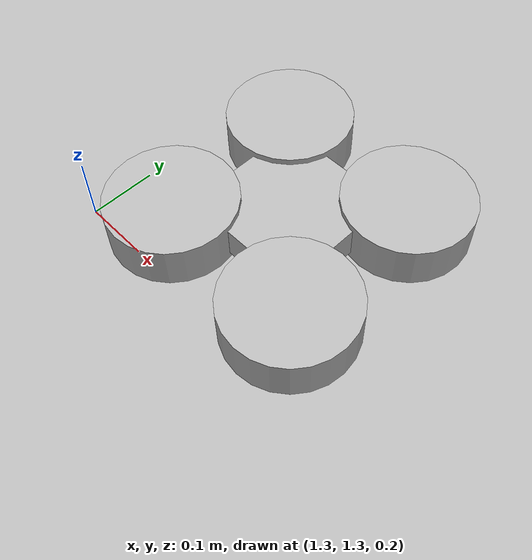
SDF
<?xml version='1.0'?>
<sdf version="1.6">
	<world name="default">
		<physics type="ode">
			<max_step_size>0.001</max_step_size>
			<real_time_update_rate>0</real_time_update_rate><!-- Handled by Paparazzi! -->
			<ode>
				<solver>
					<type>quick</type>
					<iters>1</iters>
				</solver>
			</ode>
		</physics>
		<scene>
			<ambient>0.4 0.4 0.4 1</ambient>
			<background>0.7 0.7 0.7 1</background>
			<shadows>0</shadows>
		</scene>
		<light name='sun' type='directional'>
			<cast_shadows>1</cast_shadows>
			<pose frame=''>0 0 10 0 -0 0</pose>
			<diffuse>0.8 0.8 0.8 1</diffuse>
			<specular>0.1 0.1 0.1 1</specular>
			<attenuation>
				<range>1000</range>
				<constant>0.9</constant>
				<linear>0.01</linear>
				<quadratic>0.001</quadratic>
			</attenuation>
			<direction>-0.5 0.5 -1</direction>
		</light>
		<spherical_coordinates>
			<surface_model>EARTH_WGS84</surface_model>
			<latitude_deg>51.9906</latitude_deg>
			<longitude_deg>4.37679</longitude_deg>
			<elevation>0</elevation>
			<heading_deg>180</heading_deg><!-- Temporary fix for issue https://bitbucket.org/osrf/gazebo/issues/2022/default-sphericalcoordinates-frame-should -->
		</spherical_coordinates>

		<include>
			<uri>model://hallway_closed</uri>
		</include>
		<include>
			<uri>model://ardrone_omni</uri>
            <pose>1.5 1.5 0.2 0 0 0</pose>
		</include>

	</world>
</sdf>

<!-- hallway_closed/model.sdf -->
<sdf version='1.6'>
  <model name='hallway_closed'>
    <link name='link_0'>
      <visual name='visual'>
        <geometry>
          <mesh>
            <uri>model://hallway_closed/hallway_closed_without_door.dae</uri>
            <scale>1 1 1</scale>
          </mesh>
        </geometry>
        <cast_shadows>0</cast_shadows>
      </visual>
      <collision name='collision'>
        <geometry>
          <mesh>
            <uri>model://hallway_closed/hallway_closed_without_door.dae</uri>
          </mesh>
        </geometry>
      </collision>
    </link>
    <static>1</static>
  </model>
</sdf>

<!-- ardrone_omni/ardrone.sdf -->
<sdf version='1.4'>
	<model name="paparazzi_uav">
		<pose>0 0 .1 0 0 0</pose>

		<link name="chassis">
			<velocity_decay>
				<linear>0.001</linear>
			</velocity_decay>
			<inertial><!-- Taken from Paparazzi's ARDrone model for JSBsim -->
				<mass>0.4</mass>
				<inertia>
					<ixx> 0.005 </ixx>
					<iyy> 0.005 </iyy>
					<izz> 0.010 </izz>
					<ixy> 0. </ixy>
					<ixz> 0. </ixz>
					<iyz> 0. </iyz>
				</inertia>
			</inertial>

			<collision name="collision">
				<geometry>
					<box>
						<size>.4 .4 .05</size>
					</box>
				</geometry>
			</collision>

			<visual name="visual">
				<geometry>
					<box>
						<size>.2 .2 .05</size>
					</box>
				</geometry>
			</visual>

			<sensor name="contactsensor" type="contact">
				<contact>
					<collision>collision</collision>
				</contact>
			</sensor>
		</link>

		<link name="bottom_camera">
			<pose>0 0 -.06 0 1.57 3.1415</pose>
			<inertial>
				<mass>0.001</mass>
				<inertia>
					<ixx>.0001</ixx>
					<iyy>.0001</iyy>
					<izz>.0001</izz>
					<ixy>0</ixy>
					<iyz>0</iyz>
					<ixz>0</ixz>
				</inertia>
			</inertial>
			<sensor name="camera" type="wideanglecamera">
				<update_rate>30</update_rate>
				<camera>
					<horizontal_fov>6.2831</horizontal_fov>
					<image>
						<width>240</width>
						<height>240</height>
					</image>
					<clip>
						<near>0.01</near>
						<far>100</far>
					</clip>
					<lens>
						<type>custom</type>
						<custom_function>
							<c1>1.0</c1>
							<c2>4</c2>
							<f>1.0</f>
							<fun>id</fun>
						</custom_function>
						<scale_to_hfov>true</scale_to_hfov>
						<cutoff_angle>3.1415</cutoff_angle>
						<env_texture_size>64</env_texture_size>
					</lens>
					<noise>
						<type>gaussian</type>
						<!-- Noise is sampled independently per pixel on each frame. That pixel's
							noise value is added to each of its color channels, which at that point lie
							in the range [0,1]. -->
						<mean>0.0</mean>
						<stddev>0.007</stddev>
					</noise>
				</camera>
			</sensor>
		</link>

		<joint name="bottom_camera_joint" type="fixed">
			<parent>chassis</parent>
			<child>bottom_camera</child>
		</joint>

		<link name="nw_motor">
			<pose>0.12 0.12 0 0 0 0</pose>
			<inertial>
				<mass>0.01</mass>
				<inertia>
					<ixx>.0001</ixx>
					<iyy>.0001</iyy>
					<izz>.0001</izz>
					<ixy>0</ixy>
					<iyz>0</iyz>
					<ixz>0</ixz>
				</inertia>
			</inertial>
			<visual name="visual">
				<geometry>
					<cylinder>
						<radius>0.10</radius>
						<length>.07</length>
					</cylinder>
				</geometry>
			</visual>
		</link>

		<joint type="fixed" name="nw_motor_joint">
			<parent>chassis</parent>
			<child>nw_motor</child>
		</joint>

		<link name="se_motor">
			<pose>-0.12 -0.12 0 0 0 0</pose>
			<inertial>
				<mass>0.01</mass>
				<inertia>
					<ixx>.0001</ixx>
					<iyy>.0001</iyy>
					<izz>.0001</izz>
					<ixy>0</ixy>
					<iyz>0</iyz>
					<ixz>0</ixz>
				</inertia>
			</inertial>
			<visual name="visual">
				<geometry>
					<cylinder>
						<radius>0.10</radius>
						<length>.07</length>
					</cylinder>
				</geometry>
			</visual>
		</link>

		<joint type="fixed" name="se_motor_joint">
			<parent>chassis</parent>
			<child>se_motor</child>
		</joint>

		<link name="ne_motor">
			<pose>0.12 -0.12 0 0 0 0</pose>
			<inertial>
				<mass>0.01</mass>
				<inertia>
					<ixx>.0001</ixx>
					<iyy>.0001</iyy>
					<izz>.0001</izz>
					<ixy>0</ixy>
					<iyz>0</iyz>
					<ixz>0</ixz>
				</inertia>
			</inertial>
			<visual name="visual">
				<geometry>
					<cylinder>
						<radius>0.10</radius>
						<length>.07</length>
					</cylinder>
				</geometry>
			</visual>
		</link>

		<joint type="fixed" name="ne_motor_joint">
			<parent>chassis</parent>
			<child>ne_motor</child>
		</joint>

		<link name="sw_motor">
			<pose>-0.12 0.12 0 0 0 0</pose>
			<inertial>
				<mass>0.01</mass>
				<inertia>
					<ixx>.0001</ixx>
					<iyy>.0001</iyy>
					<izz>.0001</izz>
					<ixy>0</ixy>
					<iyz>0</iyz>
					<ixz>0</ixz>
				</inertia>
			</inertial>
			<visual name="visual">
				<geometry>
					<cylinder>
						<radius>0.10</radius>
						<length>.07</length>
					</cylinder>
				</geometry>
			</visual>
		</link>

		<joint type="fixed" name="sw_motor_joint">
			<parent>chassis</parent>
			<child>sw_motor</child>
		</joint>
	</model>
</sdf>
